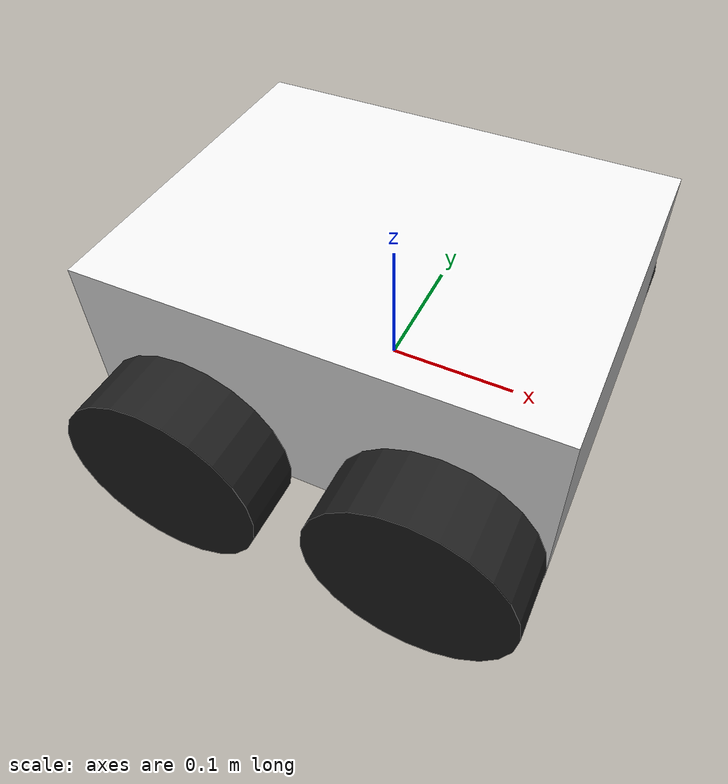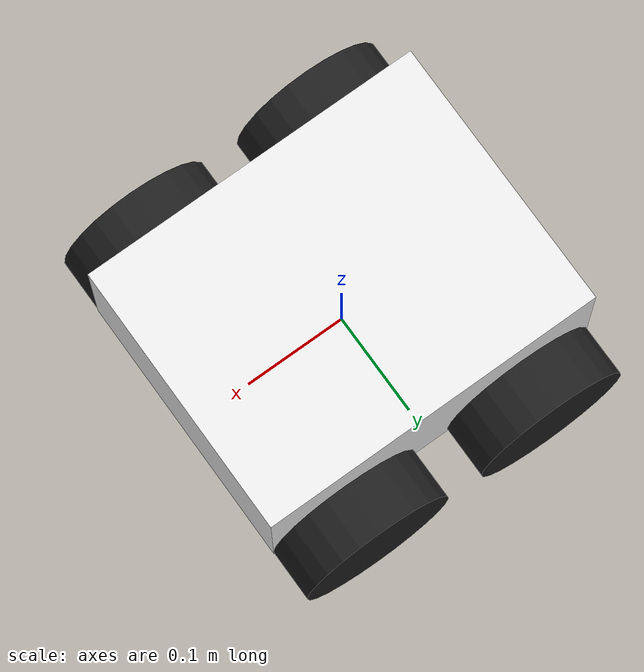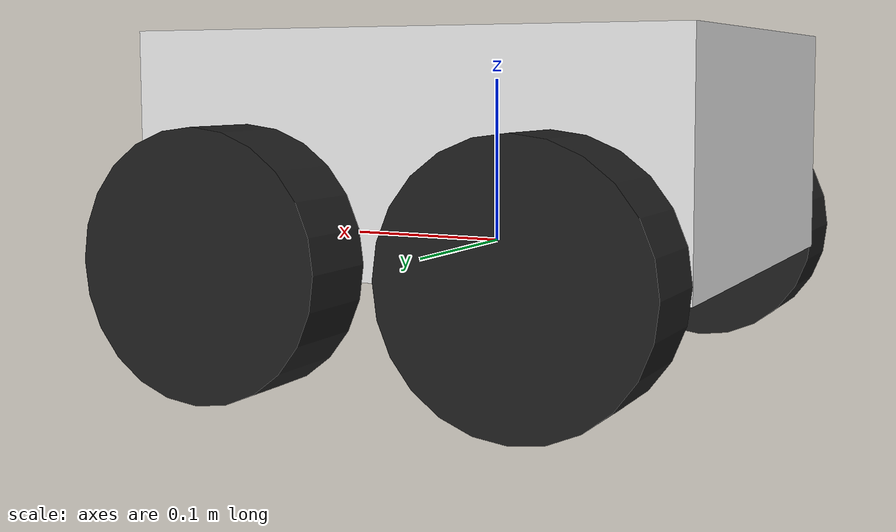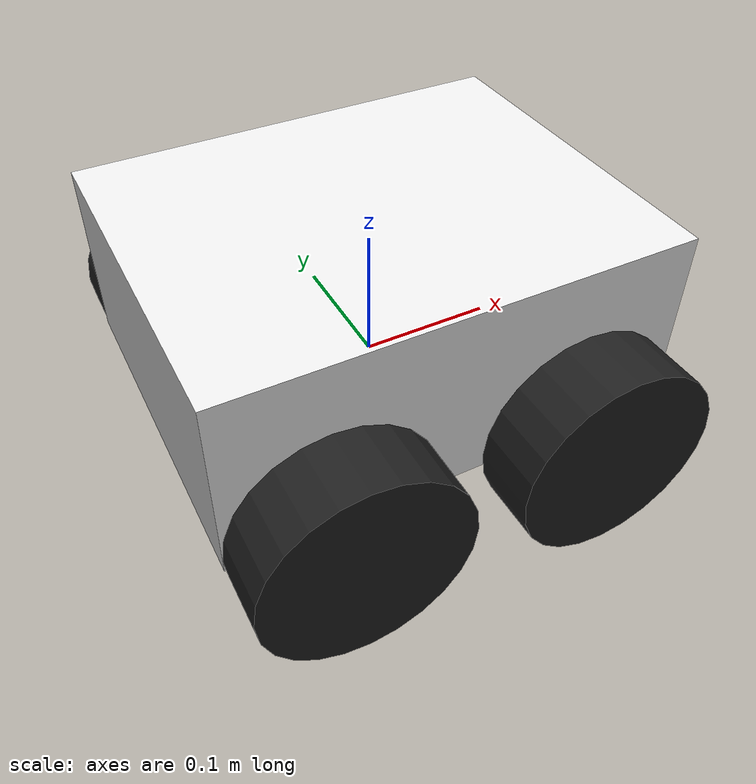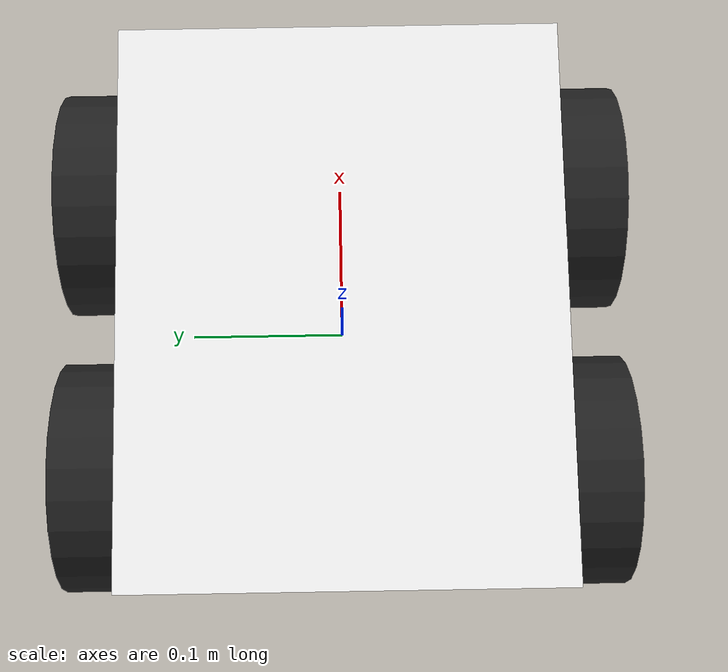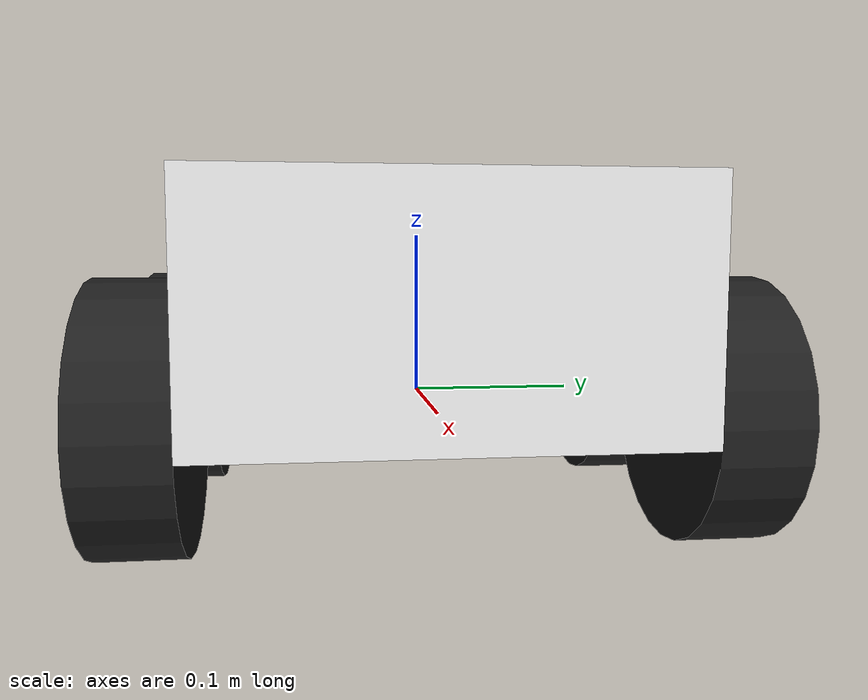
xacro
<?xml version="1.0"?>
<robot xmlns:xacro="http://www.ros.org/wiki/xacro" >

    <xacro:include filename="inertial_macros.xacro"/>

    <xacro:property name="chassis_length" value="0.335"/>
    <xacro:property name="chassis_width" value="0.265"/>
    <xacro:property name="chassis_height" value="0.138"/>
    <xacro:property name="chassis_mass" value="1.0"/>
    <xacro:property name="wheel_radius" value="0.075"/>
    <xacro:property name="wheel_thickness" value="0.050"/>
    <xacro:property name="wheel_mass" value="0.01"/>
    <xacro:property name="wheel_offset_x" value="0.226"/>
    <xacro:property name="wheel_offset_z" value="0.01"/>

    <xacro:property name="front_wheel_offset_x" value="0.226"/>
    <xacro:property name="rear_wheel_offset_x" value="-0.226"/>

    <xacro:property name="caster_wheel_radius" value="0.01"/>

    <!-- BASE LINK -->

    <link name="base_link">

    </link>

    <!-- BASE_FOOTPRINT LINK -->

    <joint name="base_footprint_joint" type="fixed">
        <parent link="base_link"/>
        <child link="base_footprint"/>
        <origin xyz="0 0 0" rpy="0 0 0"/>
    </joint>

    <link name="base_footprint">
    </link>

    <!-- CHASSIS LINK -->

    <joint name="chassis_joint" type="fixed">
        <parent link="base_link"/>
        <child link="chassis"/>
        <origin xyz="${-chassis_length/2} 0 ${-wheel_offset_z}"/>
    </joint>

    <link name="chassis">
        <visual>
            <origin xyz="${chassis_length/2} 0 ${chassis_height/2}"/>
            <geometry>
                <box size="${chassis_length} ${chassis_width} ${chassis_height}"/>
            </geometry>
            <material name="white"/>
        </visual>
        <collision>
            <origin xyz="${chassis_length/2} 0 ${chassis_height/2}"/>
            <geometry>
                <box size="${chassis_length} ${chassis_width} ${chassis_height}"/>
            </geometry>
        </collision>
        <xacro:inertial_box mass="0.5" x="${chassis_length}" y="${chassis_width}" z="${chassis_height}">
            <origin xyz="${chassis_length/2} 0 ${chassis_height/2}" rpy="0 0 0"/>
        </xacro:inertial_box>
    </link>

    <gazebo reference="chassis">
        <material>Gazebo/Orange</material>
    </gazebo>

    <!-- LEFT FRONT WHEEL LINK -->

    <joint name="left_front_wheel_joint" type="continuous">
        <parent link="base_link"/>
        <child link="left_front_wheel"/>
        <origin xyz="${chassis_length/2-wheel_radius} ${chassis_width/2+wheel_thickness/2} 0" rpy="-${pi/2} 0 0" />
        <axis xyz="0 0 1"/>
    </joint>

    <link name="left_front_wheel">
        <visual>
            <geometry>
                <cylinder radius="${wheel_radius}" length="${wheel_thickness}"/>
            </geometry>
            <material name="black"/>
        </visual>
        <collision>
            <geometry>
                <sphere radius="${wheel_radius}"/>
            </geometry>
        </collision>
        <xacro:inertial_cylinder mass="${wheel_mass}" length="${wheel_thickness}" radius="${wheel_radius}">
            <origin xyz="0 0 0" rpy="0 0 0"/>
        </xacro:inertial_cylinder>
    </link>

    <gazebo reference="left_front_wheel">
        <material>Gazebo/Black</material>
    </gazebo>

     <!-- LEFT REAR WHEEL LINK -->

    <joint name="left_rear_wheel_joint" type="continuous">
        <parent link="base_link"/>
        <child link="left_rear_wheel"/>
        <origin xyz="-${chassis_length/2-wheel_radius} ${chassis_width/2+wheel_thickness/2} 0" rpy="-${pi/2} 0 0" />
        <axis xyz="0 0 1"/>
    </joint>

    <link name="left_rear_wheel">
        <visual>
            <geometry>
                <cylinder radius="${wheel_radius}" length="${wheel_thickness}"/>
            </geometry>
            <material name="black"/>
        </visual>
        <collision>
            <geometry>
                <sphere radius="${wheel_radius}"/>
            </geometry>
        </collision>
        <xacro:inertial_cylinder mass="${wheel_mass}" length="${wheel_thickness}" radius="${wheel_radius}">
            <origin xyz="0 0 0" rpy="0 0 0"/>
        </xacro:inertial_cylinder>
    </link>

    <gazebo reference="left_rear_wheel">
        <material>Gazebo/Black</material>
    </gazebo>

    <!-- RIGHT WHEEL LINK -->

    <joint name="right_front_wheel_joint" type="continuous">
        <parent link="base_link"/>
        <child link="right_front_wheel"/>
        <origin xyz="${chassis_length/2-wheel_radius} ${-chassis_width/2-wheel_thickness/2} 0" rpy="${pi/2} 0 0" />
        <axis xyz="0 0 -1"/>
    </joint>

    <link name="right_front_wheel">
        <visual>
            <geometry>
                <cylinder radius="${wheel_radius}" length="${wheel_thickness}"/>
            </geometry>
            <material name="black"/>
        </visual>
        <collision>
            <geometry>
                <sphere radius="${wheel_radius}"/>
            </geometry>
        </collision>
        <xacro:inertial_cylinder mass="${wheel_mass}" length="${wheel_thickness}" radius="${wheel_radius}">
            <origin xyz="0 0 0" rpy="0 0 0"/>
        </xacro:inertial_cylinder>
    </link>

    <gazebo reference="right_front_wheel">
        <material>Gazebo/Black</material>
    </gazebo>

    <!-- RIGHT WHEEL LINK -->

    <joint name="right_rear_wheel_joint" type="continuous">
        <parent link="base_link"/>
        <child link="right_rear_wheel"/>
        <origin xyz="-${chassis_length/2-wheel_radius} ${-chassis_width/2-wheel_thickness/2} 0" rpy="${pi/2} 0 0" />
        <axis xyz="0 0 -1"/>
    </joint>

    <link name="right_rear_wheel">
        <visual>
            <geometry>
                <cylinder radius="${wheel_radius}" length="${wheel_thickness}"/>
            </geometry>
            <material name="black"/>
        </visual>
        <collision>
            <geometry>
                <sphere radius="${wheel_radius}"/>
            </geometry>
        </collision>
        <xacro:inertial_cylinder mass="${wheel_mass}" length="${wheel_thickness}" radius="${wheel_radius}">
            <origin xyz="0 0 0" rpy="0 0 0"/>
        </xacro:inertial_cylinder>
    </link>

    <gazebo reference="right_rear_wheel">
        <material>Gazebo/Black</material>
    </gazebo>

    <!-- CASTER WHEEL LINK -->

</robot>
